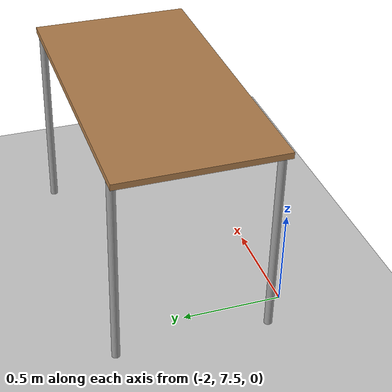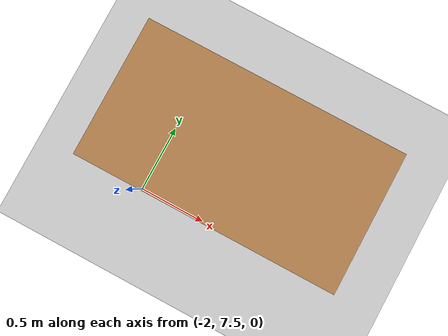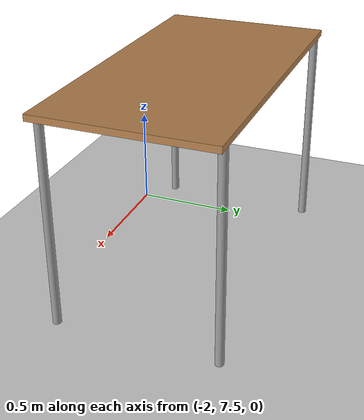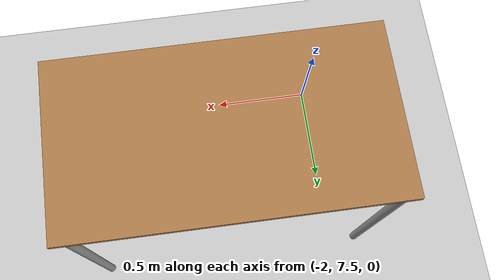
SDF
<sdf version="1.5">
 <world name="default">
  <include><uri>model://ground_plane</uri></include>
  <include><uri>model://sun</uri></include>
  <model name="table_clone">
   <static>1</static>
   <link name="link">
    <collision name="surface">
     <pose>0 0 1 0 -0 0</pose>
     <geometry><box><size>1.5 0.8 0.03</size></box></geometry>
     <surface><friction><ode><mu>0.6</mu><mu2>0.6</mu2></ode></friction></surface>
    </collision>
    <visual name="visual1">
     <pose>0 0 1 0 -0 0</pose>
     <geometry><box><size>1.5 0.8 0.03</size></box></geometry>
     <material>
      <script><uri>file://media/materials/scripts/gazebo.material</uri><name>Gazebo/Wood</name></script>
     </material>
    </visual>
    <collision name="front_left_leg">
     <pose>0.68 0.38 0.5 0 -0 0</pose>
     <geometry><cylinder><radius>0.02</radius><length>1</length></cylinder></geometry>
    </collision>
    <visual name="front_left_leg">
     <pose>0.68 0.38 0.5 0 -0 0</pose>
     <geometry><cylinder><radius>0.02</radius><length>1</length></cylinder></geometry>
     <material>
      <script><uri>file://media/materials/scripts/gazebo.material</uri><name>Gazebo/Grey</name></script>
     </material>
    </visual>
    <collision name="front_right_leg">
     <pose>0.68 -0.38 0.5 0 -0 0</pose>
     <geometry><cylinder><radius>0.02</radius><length>1</length></cylinder></geometry>
    </collision>
    <visual name="front_right_leg">
     <pose>0.68 -0.38 0.5 0 -0 0</pose>
     <geometry><cylinder><radius>0.02</radius><length>1</length></cylinder></geometry>
     <material>
      <script><uri>file://media/materials/scripts/gazebo.material</uri><name>Gazebo/Grey</name></script>
     </material>
    </visual>
    <collision name="back_right_leg">
     <pose>-0.68 -0.38 0.5 0 -0 0</pose>
     <geometry><cylinder><radius>0.02</radius><length>1</length></cylinder></geometry>
    </collision>
    <visual name="back_right_leg">
     <pose>-0.68 -0.38 0.5 0 -0 0</pose>
     <geometry><cylinder><radius>0.02</radius><length>1</length></cylinder></geometry>
     <material>
      <script><uri>file://media/materials/scripts/gazebo.material</uri><name>Gazebo/Grey</name></script>
     </material>
    </visual>
    <collision name="back_left_leg">
     <pose>-0.68 0.38 0.5 0 -0 0</pose>
     <geometry><cylinder><radius>0.02</radius><length>1</length></cylinder></geometry>
    </collision>
    <visual name="back_left_leg">
     <pose>-0.68 0.38 0.5 0 -0 0</pose>
     <geometry><cylinder><radius>0.02</radius><length>1</length></cylinder></geometry>
     <material>
      <script><uri>file://media/materials/scripts/gazebo.material</uri><name>Gazebo/Grey</name></script>
     </material>
    </visual>
   </link>
   <pose>-1.46515 8 0 0 -0 0</pose>
  </model>
 </world>
</sdf>
